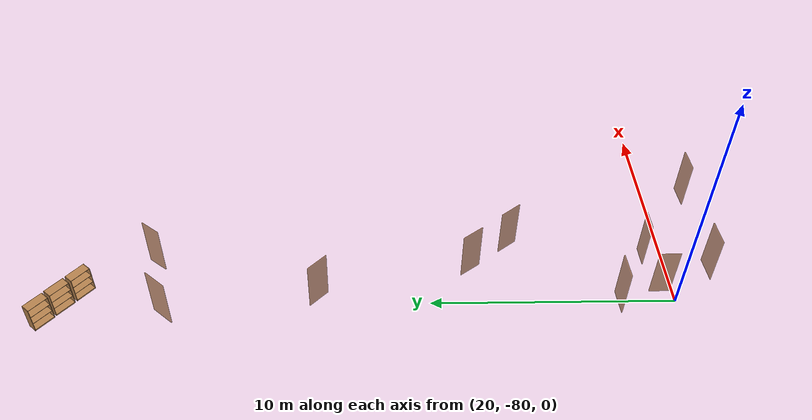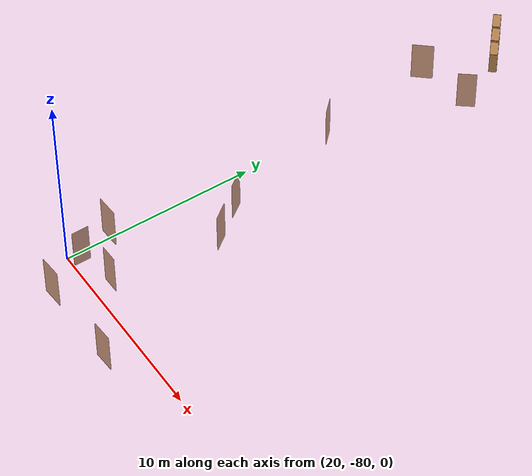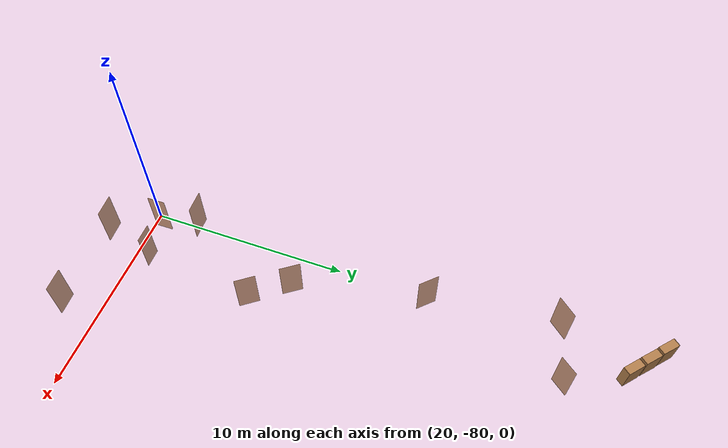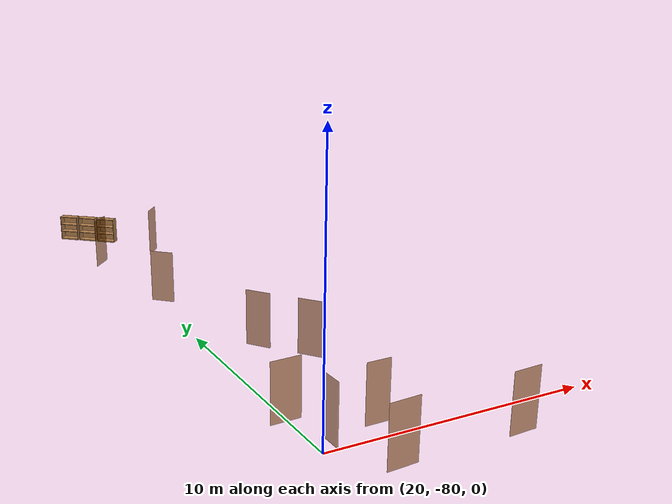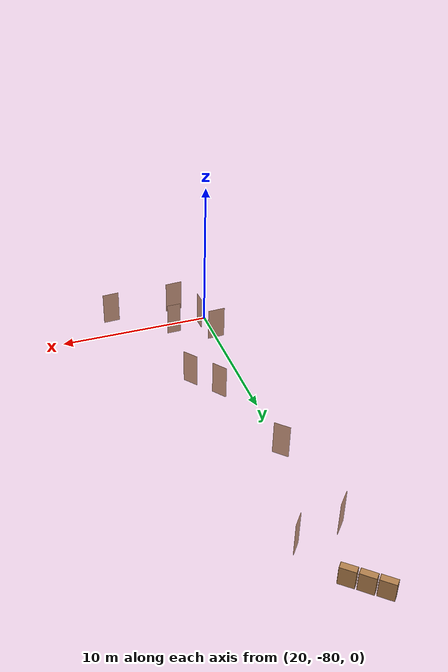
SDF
<sdf version="1.7">
 <world name="world">
  <model name="OpenRobotics/Bookshelf">
   <static>1</static>
   <link name="link">
    <inertial><mass>1</mass></inertial>
    <collision name="back">
     <pose>0 0.005 0.6 0 -0 0</pose>
     <geometry><box><size>0.9 0.01 1.2</size></box></geometry>
    </collision>
    <visual name="visual1">
     <pose>0 0.005 0.6 0 -0 0</pose>
     <geometry><box><size>0.9 0.01 1.2</size></box></geometry>
     <material>
      <script><uri>file://media/materials/scripts/gazebo.material</uri><name>Gazebo/Wood</name></script>
     </material>
    </visual>
    <collision name="left_side">
     <pose>0.45 -0.195 0.6 0 -0 0</pose>
     <geometry><box><size>0.02 0.4 1.2</size></box></geometry>
    </collision>
    <visual name="visual2">
     <pose>0.45 -0.195 0.6 0 -0 0</pose>
     <geometry><box><size>0.02 0.4 1.2</size></box></geometry>
     <material>
      <script><uri>file://media/materials/scripts/gazebo.material</uri><name>Gazebo/Wood</name></script>
     </material>
    </visual>
    <collision name="right_side">
     <pose>-0.45 -0.195 0.6 0 -0 0</pose>
     <geometry><box><size>0.02 0.4 1.2</size></box></geometry>
    </collision>
    <visual name="visual3">
     <pose>-0.45 -0.195 0.6 0 -0 0</pose>
     <geometry><box><size>0.02 0.4 1.2</size></box></geometry>
     <material>
      <script><uri>file://media/materials/scripts/gazebo.material</uri><name>Gazebo/Wood</name></script>
     </material>
    </visual>
    <collision name="bottom">
     <pose>0 -0.195 0.03 0 -0 0</pose>
     <geometry><box><size>0.88 0.4 0.06</size></box></geometry>
    </collision>
    <visual name="visual4">
     <pose>0 -0.195 0.03 0 -0 0</pose>
     <geometry><box><size>0.88 0.4 0.06</size></box></geometry>
     <material>
      <script><uri>file://media/materials/scripts/gazebo.material</uri><name>Gazebo/Wood</name></script>
     </material>
    </visual>
    <collision name="top">
     <pose>0 -0.195 1.19 0 -0 0</pose>
     <geometry><box><size>0.88 0.4 0.02</size></box></geometry>
    </collision>
    <visual name="visual5">
     <pose>0 -0.195 1.19 0 -0 0</pose>
     <geometry><box><size>0.88 0.4 0.02</size></box></geometry>
     <material>
      <script><uri>file://media/materials/scripts/gazebo.material</uri><name>Gazebo/Wood</name></script>
     </material>
    </visual>
    <collision name="low_shelf">
     <pose>0 -0.195 0.43 0 -0 0</pose>
     <geometry><box><size>0.88 0.4 0.02</size></box></geometry>
    </collision>
    <visual name="visual6">
     <pose>0 -0.195 0.43 0 -0 0</pose>
     <geometry><box><size>0.88 0.4 0.02</size></box></geometry>
     <material>
      <script><uri>file://media/materials/scripts/gazebo.material</uri><name>Gazebo/Wood</name></script>
     </material>
    </visual>
    <collision name="high_shelf">
     <pose>0 -0.195 0.8 0 -0 0</pose>
     <geometry><box><size>0.88 0.4 0.02</size></box></geometry>
    </collision>
    <visual name="visual7">
     <pose>0 -0.195 0.8 0 -0 0</pose>
     <geometry><box><size>0.88 0.4 0.02</size></box></geometry>
     <material>
      <script><uri>file://media/materials/scripts/gazebo.material</uri><name>Gazebo/Wood</name></script>
     </material>
    </visual>
   </link>
   <pose>19.4161 -54.2992 0 0 0 -0.7204</pose>
  </model>
  <model name="OpenRobotics/Bookshelf_2">
   <static>1</static>
   <link name="link">
    <inertial><mass>1</mass></inertial>
    <collision name="back">
     <pose>0 0.005 0.6 0 -0 0</pose>
     <geometry><box><size>0.9 0.01 1.2</size></box></geometry>
    </collision>
    <visual name="visual1">
     <pose>0 0.005 0.6 0 -0 0</pose>
     <geometry><box><size>0.9 0.01 1.2</size></box></geometry>
     <material>
      <script><uri>file://media/materials/scripts/gazebo.material</uri><name>Gazebo/Wood</name></script>
     </material>
    </visual>
    <collision name="left_side">
     <pose>0.45 -0.195 0.6 0 -0 0</pose>
     <geometry><box><size>0.02 0.4 1.2</size></box></geometry>
    </collision>
    <visual name="visual2">
     <pose>0.45 -0.195 0.6 0 -0 0</pose>
     <geometry><box><size>0.02 0.4 1.2</size></box></geometry>
     <material>
      <script><uri>file://media/materials/scripts/gazebo.material</uri><name>Gazebo/Wood</name></script>
     </material>
    </visual>
    <collision name="right_side">
     <pose>-0.45 -0.195 0.6 0 -0 0</pose>
     <geometry><box><size>0.02 0.4 1.2</size></box></geometry>
    </collision>
    <visual name="visual3">
     <pose>-0.45 -0.195 0.6 0 -0 0</pose>
     <geometry><box><size>0.02 0.4 1.2</size></box></geometry>
     <material>
      <script><uri>file://media/materials/scripts/gazebo.material</uri><name>Gazebo/Wood</name></script>
     </material>
    </visual>
    <collision name="bottom">
     <pose>0 -0.195 0.03 0 -0 0</pose>
     <geometry><box><size>0.88 0.4 0.06</size></box></geometry>
    </collision>
    <visual name="visual4">
     <pose>0 -0.195 0.03 0 -0 0</pose>
     <geometry><box><size>0.88 0.4 0.06</size></box></geometry>
     <material>
      <script><uri>file://media/materials/scripts/gazebo.material</uri><name>Gazebo/Wood</name></script>
     </material>
    </visual>
    <collision name="top">
     <pose>0 -0.195 1.19 0 -0 0</pose>
     <geometry><box><size>0.88 0.4 0.02</size></box></geometry>
    </collision>
    <visual name="visual5">
     <pose>0 -0.195 1.19 0 -0 0</pose>
     <geometry><box><size>0.88 0.4 0.02</size></box></geometry>
     <material>
      <script><uri>file://media/materials/scripts/gazebo.material</uri><name>Gazebo/Wood</name></script>
     </material>
    </visual>
    <collision name="low_shelf">
     <pose>0 -0.195 0.43 0 -0 0</pose>
     <geometry><box><size>0.88 0.4 0.02</size></box></geometry>
    </collision>
    <visual name="visual6">
     <pose>0 -0.195 0.43 0 -0 0</pose>
     <geometry><box><size>0.88 0.4 0.02</size></box></geometry>
     <material>
      <script><uri>file://media/materials/scripts/gazebo.material</uri><name>Gazebo/Wood</name></script>
     </material>
    </visual>
    <collision name="high_shelf">
     <pose>0 -0.195 0.8 0 -0 0</pose>
     <geometry><box><size>0.88 0.4 0.02</size></box></geometry>
    </collision>
    <visual name="visual7">
     <pose>0 -0.195 0.8 0 -0 0</pose>
     <geometry><box><size>0.88 0.4 0.02</size></box></geometry>
     <material>
      <script><uri>file://media/materials/scripts/gazebo.material</uri><name>Gazebo/Wood</name></script>
     </material>
    </visual>
   </link>
   <pose>20.1799 -54.9462 0 0 0 -0.7282</pose>
  </model>
  <model name="OpenRobotics/Bookshelf_3">
   <static>1</static>
   <link name="link">
    <inertial><mass>1</mass></inertial>
    <collision name="back">
     <pose>0 0.005 0.6 0 -0 0</pose>
     <geometry><box><size>0.9 0.01 1.2</size></box></geometry>
    </collision>
    <visual name="visual1">
     <pose>0 0.005 0.6 0 -0 0</pose>
     <geometry><box><size>0.9 0.01 1.2</size></box></geometry>
     <material>
      <script><uri>file://media/materials/scripts/gazebo.material</uri><name>Gazebo/Wood</name></script>
     </material>
    </visual>
    <collision name="left_side">
     <pose>0.45 -0.195 0.6 0 -0 0</pose>
     <geometry><box><size>0.02 0.4 1.2</size></box></geometry>
    </collision>
    <visual name="visual2">
     <pose>0.45 -0.195 0.6 0 -0 0</pose>
     <geometry><box><size>0.02 0.4 1.2</size></box></geometry>
     <material>
      <script><uri>file://media/materials/scripts/gazebo.material</uri><name>Gazebo/Wood</name></script>
     </material>
    </visual>
    <collision name="right_side">
     <pose>-0.45 -0.195 0.6 0 -0 0</pose>
     <geometry><box><size>0.02 0.4 1.2</size></box></geometry>
    </collision>
    <visual name="visual3">
     <pose>-0.45 -0.195 0.6 0 -0 0</pose>
     <geometry><box><size>0.02 0.4 1.2</size></box></geometry>
     <material>
      <script><uri>file://media/materials/scripts/gazebo.material</uri><name>Gazebo/Wood</name></script>
     </material>
    </visual>
    <collision name="bottom">
     <pose>0 -0.195 0.03 0 -0 0</pose>
     <geometry><box><size>0.88 0.4 0.06</size></box></geometry>
    </collision>
    <visual name="visual4">
     <pose>0 -0.195 0.03 0 -0 0</pose>
     <geometry><box><size>0.88 0.4 0.06</size></box></geometry>
     <material>
      <script><uri>file://media/materials/scripts/gazebo.material</uri><name>Gazebo/Wood</name></script>
     </material>
    </visual>
    <collision name="top">
     <pose>0 -0.195 1.19 0 -0 0</pose>
     <geometry><box><size>0.88 0.4 0.02</size></box></geometry>
    </collision>
    <visual name="visual5">
     <pose>0 -0.195 1.19 0 -0 0</pose>
     <geometry><box><size>0.88 0.4 0.02</size></box></geometry>
     <material>
      <script><uri>file://media/materials/scripts/gazebo.material</uri><name>Gazebo/Wood</name></script>
     </material>
    </visual>
    <collision name="low_shelf">
     <pose>0 -0.195 0.43 0 -0 0</pose>
     <geometry><box><size>0.88 0.4 0.02</size></box></geometry>
    </collision>
    <visual name="visual6">
     <pose>0 -0.195 0.43 0 -0 0</pose>
     <geometry><box><size>0.88 0.4 0.02</size></box></geometry>
     <material>
      <script><uri>file://media/materials/scripts/gazebo.material</uri><name>Gazebo/Wood</name></script>
     </material>
    </visual>
    <collision name="high_shelf">
     <pose>0 -0.195 0.8 0 -0 0</pose>
     <geometry><box><size>0.88 0.4 0.02</size></box></geometry>
    </collision>
    <visual name="visual7">
     <pose>0 -0.195 0.8 0 -0 0</pose>
     <geometry><box><size>0.88 0.4 0.02</size></box></geometry>
     <material>
      <script><uri>file://media/materials/scripts/gazebo.material</uri><name>Gazebo/Wood</name></script>
     </material>
    </visual>
   </link>
   <pose>20.9437 -55.604 0 0 0 -0.7114</pose>
  </model>
  <model name="D48">
   <pose>22.3302 -58.5926 0 -0 -0 -2.24159</pose>
   <link name="right">
    <pose>0 0 1.11 0 -0 0</pose>
    <visual name="right_visual">
     <geometry><box><size>0.932179 0.03 2.2</size></box></geometry>
     <material><ambient>0.5 0.25 0 0.6</ambient><diffuse>0.5 0.25 0 0.6</diffuse></material>
    </visual>
    <collision name="right_collision">
     <geometry><box><size>0.932179 0.03 2.2</size></box></geometry>
     <surface><contact><collide_bitmask>2</collide_bitmask></contact></surface>
    </collision>
    <inertial>
     <mass>50</mass>
     <inertia><ixx>20.1704</ixx><iyy>23.7873</iyy><izz>3.62441</izz><ixy>0</ixy><ixz>0</ixz><iyz>0</iyz></inertia>
    </inertial>
   </link>
   <joint name="right_joint" type="revolute">
    <parent>world</parent>
    <child>right</child>
    <axis>
     <xyz>0 0 -1</xyz>
     <limit><lower>0</lower><upper>1.57</upper></limit>
     <dynamics><spring_reference>0</spring_reference><spring_stiffness>0</spring_stiffness></dynamics>
    </axis>
    <pose>0.47109 0 0 0 -0 0</pose>
   </joint>
   <plugin name="door_D48" filename="libdoor.so">
    <v_max_door>0.5</v_max_door>
    <a_max_door>0.3</a_max_door>
    <a_nom_door>0.15</a_nom_door>
    <dx_min_door>0.01</dx_min_door>
    <f_max_door>500.0</f_max_door>
    <door name="D48" type="SwingDoor" left_joint_name="empty_joint" right_joint_name="right_joint"/>
   </plugin>
  </model>
  <model name="D49">
   <pose>19.5017 -59.2239 0 -0 -0 -2.2891</pose>
   <link name="right">
    <pose>0 0 1.11 0 -0 0</pose>
    <visual name="right_visual">
     <geometry><box><size>1.08767 0.03 2.2</size></box></geometry>
     <material><ambient>0.5 0.25 0 0.6</ambient><diffuse>0.5 0.25 0 0.6</diffuse></material>
    </visual>
    <collision name="right_collision">
     <geometry><box><size>1.08767 0.03 2.2</size></box></geometry>
     <surface><contact><collide_bitmask>2</collide_bitmask></contact></surface>
    </collision>
    <inertial>
     <mass>50</mass>
     <inertia><ixx>20.1704</ixx><iyy>25.096</iyy><izz>4.93307</izz><ixy>0</ixy><ixz>0</ixz><iyz>0</iyz></inertia>
    </inertial>
   </link>
   <joint name="right_joint" type="revolute">
    <parent>world</parent>
    <child>right</child>
    <axis>
     <xyz>0 0 1</xyz>
     <limit><lower>0</lower><upper>1.57</upper></limit>
     <dynamics><spring_reference>0</spring_reference><spring_stiffness>0</spring_stiffness></dynamics>
    </axis>
    <pose>0.548837 0 0 0 -0 0</pose>
   </joint>
   <plugin name="door_D49" filename="libdoor.so">
    <v_max_door>0.5</v_max_door>
    <a_max_door>0.3</a_max_door>
    <a_nom_door>0.15</a_nom_door>
    <dx_min_door>0.01</dx_min_door>
    <f_max_door>500.0</f_max_door>
    <door name="D49" type="SwingDoor" left_joint_name="empty_joint" right_joint_name="right_joint"/>
   </plugin>
  </model>
  <model name="D50">
   <pose>20.3197 -65.4707 0 0 -0 2.36139</pose>
   <link name="right">
    <pose>0 0 1.11 0 -0 0</pose>
    <visual name="right_visual">
     <geometry><box><size>1.00906 0.03 2.2</size></box></geometry>
     <material><ambient>0.5 0.25 0 0.6</ambient><diffuse>0.5 0.25 0 0.6</diffuse></material>
    </visual>
    <collision name="right_collision">
     <geometry><box><size>1.00906 0.03 2.2</size></box></geometry>
     <surface><contact><collide_bitmask>2</collide_bitmask></contact></surface>
    </collision>
    <inertial>
     <mass>50</mass>
     <inertia><ixx>20.1704</ixx><iyy>24.4092</iyy><izz>4.24628</izz><ixy>0</ixy><ixz>0</ixz><iyz>0</iyz></inertia>
    </inertial>
   </link>
   <joint name="right_joint" type="revolute">
    <parent>world</parent>
    <child>right</child>
    <axis>
     <xyz>0 0 -1</xyz>
     <limit><lower>0</lower><upper>1.57</upper></limit>
     <dynamics><spring_reference>0</spring_reference><spring_stiffness>0</spring_stiffness></dynamics>
    </axis>
    <pose>0.509531 0 0 0 -0 0</pose>
   </joint>
   <plugin name="door_D50" filename="libdoor.so">
    <v_max_door>0.5</v_max_door>
    <a_max_door>0.3</a_max_door>
    <a_nom_door>0.15</a_nom_door>
    <dx_min_door>0.01</dx_min_door>
    <f_max_door>500.0</f_max_door>
    <door name="D50" type="SwingDoor" left_joint_name="empty_joint" right_joint_name="right_joint"/>
   </plugin>
  </model>
  <model name="D51">
   <pose>21.8331 -71.7759 0 0 -0 -0.930625</pose>
   <link name="right">
    <pose>0 0 1.11 0 -0 0</pose>
    <visual name="right_visual">
     <geometry><box><size>1.01147 0.03 2.2</size></box></geometry>
     <material><ambient>0.5 0.25 0 0.6</ambient><diffuse>0.5 0.25 0 0.6</diffuse></material>
    </visual>
    <collision name="right_collision">
     <geometry><box><size>1.01147 0.03 2.2</size></box></geometry>
     <surface><contact><collide_bitmask>2</collide_bitmask></contact></surface>
    </collision>
    <inertial>
     <mass>50</mass>
     <inertia><ixx>20.1704</ixx><iyy>24.4294</iyy><izz>4.2665</izz><ixy>0</ixy><ixz>0</ixz><iyz>0</iyz></inertia>
    </inertial>
   </link>
   <joint name="right_joint" type="revolute">
    <parent>world</parent>
    <child>right</child>
    <axis>
     <xyz>0 0 -1</xyz>
     <limit><lower>0</lower><upper>1.57</upper></limit>
     <dynamics><spring_reference>0</spring_reference><spring_stiffness>0</spring_stiffness></dynamics>
    </axis>
    <pose>0.510732 0 0 0 -0 0</pose>
   </joint>
   <plugin name="door_D51" filename="libdoor.so">
    <v_max_door>0.5</v_max_door>
    <a_max_door>0.3</a_max_door>
    <a_nom_door>0.15</a_nom_door>
    <dx_min_door>0.01</dx_min_door>
    <f_max_door>500.0</f_max_door>
    <door name="D51" type="SwingDoor" left_joint_name="empty_joint" right_joint_name="right_joint"/>
   </plugin>
  </model>
  <model name="D52">
   <pose>23.1618 -73.4679 0 0 -0 2.22725</pose>
   <link name="right">
    <pose>0 0 1.11 0 -0 0</pose>
    <visual name="right_visual">
     <geometry><box><size>1.00368 0.03 2.2</size></box></geometry>
     <material><ambient>0.5 0.25 0 0.6</ambient><diffuse>0.5 0.25 0 0.6</diffuse></material>
    </visual>
    <collision name="right_collision">
     <geometry><box><size>1.00368 0.03 2.2</size></box></geometry>
     <surface><contact><collide_bitmask>2</collide_bitmask></contact></surface>
    </collision>
    <inertial>
     <mass>50</mass>
     <inertia><ixx>20.1704</ixx><iyy>24.364</iyy><izz>4.20111</izz><ixy>0</ixy><ixz>0</ixz><iyz>0</iyz></inertia>
    </inertial>
   </link>
   <joint name="right_joint" type="revolute">
    <parent>world</parent>
    <child>right</child>
    <axis>
     <xyz>0 0 1</xyz>
     <limit><lower>0</lower><upper>1.57</upper></limit>
     <dynamics><spring_reference>0</spring_reference><spring_stiffness>0</spring_stiffness></dynamics>
    </axis>
    <pose>0.506838 0 0 0 -0 0</pose>
   </joint>
   <plugin name="door_D52" filename="libdoor.so">
    <v_max_door>0.5</v_max_door>
    <a_max_door>0.3</a_max_door>
    <a_nom_door>0.15</a_nom_door>
    <dx_min_door>0.01</dx_min_door>
    <f_max_door>500.0</f_max_door>
    <door name="D52" type="SwingDoor" left_joint_name="empty_joint" right_joint_name="right_joint"/>
   </plugin>
  </model>
  <model name="D53">
   <pose>20.5475 -79.4904 0 0 0 -1.55351</pose>
   <link name="right">
    <pose>0 0 1.11 0 -0 0</pose>
    <visual name="right_visual">
     <geometry><box><size>0.875661 0.03 2.2</size></box></geometry>
     <material><ambient>0.5 0.25 0 0.6</ambient><diffuse>0.5 0.25 0 0.6</diffuse></material>
    </visual>
    <collision name="right_collision">
     <geometry><box><size>0.875661 0.03 2.2</size></box></geometry>
     <surface><contact><collide_bitmask>2</collide_bitmask></contact></surface>
    </collision>
    <inertial>
     <mass>50</mass>
     <inertia><ixx>20.1704</ixx><iyy>23.3616</iyy><izz>3.19868</izz><ixy>0</ixy><ixz>0</ixz><iyz>0</iyz></inertia>
    </inertial>
   </link>
   <joint name="right_joint" type="revolute">
    <parent>world</parent>
    <child>right</child>
    <axis>
     <xyz>0 0 1</xyz>
     <limit><lower>0</lower><upper>1.57</upper></limit>
     <dynamics><spring_reference>0</spring_reference><spring_stiffness>0</spring_stiffness></dynamics>
    </axis>
    <pose>0.442831 0 0 0 -0 0</pose>
   </joint>
   <plugin name="door_D53" filename="libdoor.so">
    <v_max_door>0.5</v_max_door>
    <a_max_door>0.3</a_max_door>
    <a_nom_door>0.15</a_nom_door>
    <dx_min_door>0.01</dx_min_door>
    <f_max_door>500.0</f_max_door>
    <door name="D53" type="SwingDoor" left_joint_name="empty_joint" right_joint_name="right_joint"/>
   </plugin>
  </model>
  <model name="D54">
   <pose>19.9595 -77.6777 0 0 -0 0.042374</pose>
   <link name="right">
    <pose>0 0 1.11 0 -0 0</pose>
    <visual name="right_visual">
     <geometry><box><size>1.13277 0.03 2.2</size></box></geometry>
     <material><ambient>0.5 0.25 0 0.6</ambient><diffuse>0.5 0.25 0 0.6</diffuse></material>
    </visual>
    <collision name="right_collision">
     <geometry><box><size>1.13277 0.03 2.2</size></box></geometry>
     <surface><contact><collide_bitmask>2</collide_bitmask></contact></surface>
    </collision>
    <inertial>
     <mass>50</mass>
     <inertia><ixx>20.1704</ixx><iyy>25.5132</iyy><izz>5.35028</izz><ixy>0</ixy><ixz>0</ixz><iyz>0</iyz></inertia>
    </inertial>
   </link>
   <joint name="right_joint" type="revolute">
    <parent>world</parent>
    <child>right</child>
    <axis>
     <xyz>0 0 -1</xyz>
     <limit><lower>0</lower><upper>1.57</upper></limit>
     <dynamics><spring_reference>0</spring_reference><spring_stiffness>0</spring_stiffness></dynamics>
    </axis>
    <pose>0.571385 0 0 0 -0 0</pose>
   </joint>
   <plugin name="door_D54" filename="libdoor.so">
    <v_max_door>0.5</v_max_door>
    <a_max_door>0.3</a_max_door>
    <a_nom_door>0.15</a_nom_door>
    <dx_min_door>0.01</dx_min_door>
    <f_max_door>500.0</f_max_door>
    <door name="D54" type="SwingDoor" left_joint_name="empty_joint" right_joint_name="right_joint"/>
   </plugin>
  </model>
  <model name="D55">
   <pose>22.4934 -79.1184 0 0 -0 -3.12599</pose>
   <link name="right">
    <pose>0 0 1.11 0 -0 0</pose>
    <visual name="right_visual">
     <geometry><box><size>0.905797 0.03 2.2</size></box></geometry>
     <material><ambient>0.5 0.25 0 0.6</ambient><diffuse>0.5 0.25 0 0.6</diffuse></material>
    </visual>
    <collision name="right_collision">
     <geometry><box><size>0.905797 0.03 2.2</size></box></geometry>
     <surface><contact><collide_bitmask>2</collide_bitmask></contact></surface>
    </collision>
    <inertial>
     <mass>50</mass>
     <inertia><ixx>20.1704</ixx><iyy>23.5853</iyy><izz>3.42237</izz><ixy>0</ixy><ixz>0</ixz><iyz>0</iyz></inertia>
    </inertial>
   </link>
   <joint name="right_joint" type="revolute">
    <parent>world</parent>
    <child>right</child>
    <axis>
     <xyz>0 0 1</xyz>
     <limit><lower>0</lower><upper>1.57</upper></limit>
     <dynamics><spring_reference>0</spring_reference><spring_stiffness>0</spring_stiffness></dynamics>
    </axis>
    <pose>0.457898 0 0 0 -0 0</pose>
   </joint>
   <plugin name="door_D55" filename="libdoor.so">
    <v_max_door>0.5</v_max_door>
    <a_max_door>0.3</a_max_door>
    <a_nom_door>0.15</a_nom_door>
    <dx_min_door>0.01</dx_min_door>
    <f_max_door>500.0</f_max_door>
    <door name="D55" type="SwingDoor" left_joint_name="empty_joint" right_joint_name="right_joint"/>
   </plugin>
  </model>
  <model name="D56">
   <pose>26.222 -81.7104 -0 0 -0 0.051731</pose>
   <link name="right">
    <pose>0 0 1.11 0 -0 0</pose>
    <visual name="right_visual">
     <geometry><box><size>1.08843 0.03 2.2</size></box></geometry>
     <material><ambient>0.5 0.25 0 0.6</ambient><diffuse>0.5 0.25 0 0.6</diffuse></material>
    </visual>
    <collision name="right_collision">
     <geometry><box><size>1.08843 0.03 2.2</size></box></geometry>
     <surface><contact><collide_bitmask>2</collide_bitmask></contact></surface>
    </collision>
    <inertial>
     <mass>50</mass>
     <inertia><ixx>20.1704</ixx><iyy>25.1029</iyy><izz>4.93994</izz><ixy>0</ixy><ixz>0</ixz><iyz>0</iyz></inertia>
    </inertial>
   </link>
   <joint name="right_joint" type="revolute">
    <parent>world</parent>
    <child>right</child>
    <axis>
     <xyz>0 0 1</xyz>
     <limit><lower>0</lower><upper>1.57</upper></limit>
     <dynamics><spring_reference>0</spring_reference><spring_stiffness>0</spring_stiffness></dynamics>
    </axis>
    <pose>0.549216 0 0 0 -0 0</pose>
   </joint>
   <plugin name="door_D56" filename="libdoor.so">
    <v_max_door>0.5</v_max_door>
    <a_max_door>0.3</a_max_door>
    <a_nom_door>0.15</a_nom_door>
    <dx_min_door>0.01</dx_min_door>
    <f_max_door>500.0</f_max_door>
    <door name="D56" type="SwingDoor" left_joint_name="empty_joint" right_joint_name="right_joint"/>
   </plugin>
  </model>
  <model name="D57">
   <pose>21.698 -81.7366 0 0 0 -3.07997</pose>
   <link name="right">
    <pose>0 0 1.11 0 -0 0</pose>
    <visual name="right_visual">
     <geometry><box><size>1.13323 0.03 2.2</size></box></geometry>
     <material><ambient>0.5 0.25 0 0.6</ambient><diffuse>0.5 0.25 0 0.6</diffuse></material>
    </visual>
    <collision name="right_collision">
     <geometry><box><size>1.13323 0.03 2.2</size></box></geometry>
     <surface><contact><collide_bitmask>2</collide_bitmask></contact></surface>
    </collision>
    <inertial>
     <mass>50</mass>
     <inertia><ixx>20.1704</ixx><iyy>25.5176</iyy><izz>5.35466</izz><ixy>0</ixy><ixz>0</ixz><iyz>0</iyz></inertia>
    </inertial>
   </link>
   <joint name="right_joint" type="revolute">
    <parent>world</parent>
    <child>right</child>
    <axis>
     <xyz>0 0 -1</xyz>
     <limit><lower>0</lower><upper>1.57</upper></limit>
     <dynamics><spring_reference>0</spring_reference><spring_stiffness>0</spring_stiffness></dynamics>
    </axis>
    <pose>0.571617 0 0 0 -0 0</pose>
   </joint>
   <plugin name="door_D57" filename="libdoor.so">
    <v_max_door>0.5</v_max_door>
    <a_max_door>0.3</a_max_door>
    <a_nom_door>0.15</a_nom_door>
    <dx_min_door>0.01</dx_min_door>
    <f_max_door>500.0</f_max_door>
    <door name="D57" type="SwingDoor" left_joint_name="empty_joint" right_joint_name="right_joint"/>
   </plugin>
  </model>
 </world>
</sdf>
